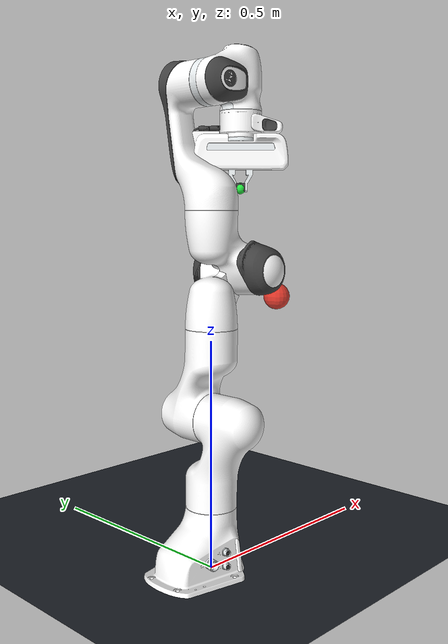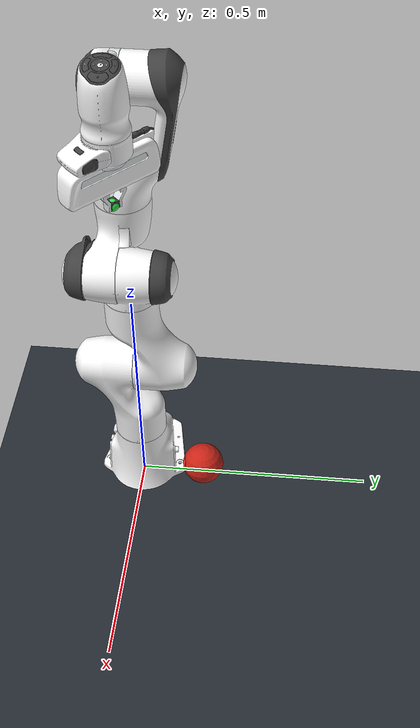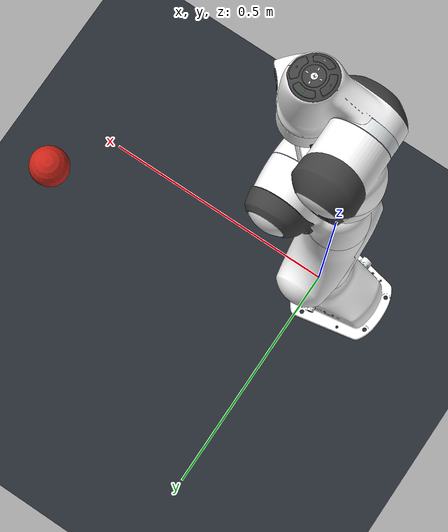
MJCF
<mujoco model="panda_box_ilqr_scene">
  <include file="panda_torque.xml"/>

  <statistic center="0.2 0 0.5" extent="1.2"/>

  <visual>
    <headlight diffuse="0.7 0.7 0.7"
               ambient="0.35 0.35 0.35"
               specular="0.1 0.1 0.1"/>
    <rgba haze="0.15 0.20 0.25 1"/>
    <global azimuth="135"
            elevation="-20"
            offwidth="1280"
            offheight="720"/>
  </visual>

  <asset>
    <texture name="skybox"
             type="skybox"
             builtin="gradient"
             rgb1="0.28 0.40 0.55"
             rgb2="0.02 0.03 0.05"
             width="512"
             height="3072"/>

    <texture name="groundplane"
             type="2d"
             builtin="checker"
             mark="edge"
             rgb1="0.20 0.22 0.25"
             rgb2="0.10 0.12 0.15"
             markrgb="0.8 0.8 0.8"
             width="300"
             height="300"/>

    <material name="groundplane"
              texture="groundplane"
              texuniform="true"
              texrepeat="5 5"
              reflectance="0.15"/>

    <material name="target_material"
              rgba="0.95 0.18 0.12 0.85"/>
  </asset>

  <worldbody>
    <geom name="ground"
          type="plane"
          size="2 2 0.1"
          material="groundplane"
          pos="0 0 0"
          contype="0"
          conaffinity="0"/>

    <!-- Reachable Cartesian target for the end-effector site. -->
    <geom name="target"
          type="sphere"
          pos="0.45 0.20 0.55"
          size="0.035"
          material="target_material"
          contype="0"
          conaffinity="0"/>
  </worldbody>
</mujoco>

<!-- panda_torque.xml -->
<mujoco model="panda">
  <compiler angle="radian" meshdir="assets" autolimits="true" />
  <option integrator="implicitfast" timestep="0.002" />
  <default>
    <default class="panda">
      <material specular="0.5" shininess="0.25" />
      <joint armature="0.1" damping="1" axis="0 0 1" range="-2.8973 2.8973" />
      <general dyntype="none" biastype="affine" ctrlrange="-2.8973 2.8973" forcerange="-87 87" />
      <default class="finger">
        <joint axis="0 1 0" type="slide" range="0 0.04" />
      </default>
      <default class="visual">
        <geom type="mesh" contype="0" conaffinity="0" group="2" />
      </default>
      <default class="collision">
        <geom type="mesh" group="3" />
        <default class="fingertip_pad_collision_1">
          <geom type="box" size="0.0085 0.004 0.0085" pos="0 0.0055 0.0445" />
        </default>
        <default class="fingertip_pad_collision_2">
          <geom type="box" size="0.003 0.002 0.003" pos="0.0055 0.002 0.05" />
        </default>
        <default class="fingertip_pad_collision_3">
          <geom type="box" size="0.003 0.002 0.003" pos="-0.0055 0.002 0.05" />
        </default>
        <default class="fingertip_pad_collision_4">
          <geom type="box" size="0.003 0.002 0.0035" pos="0.0055 0.002 0.0395" />
        </default>
        <default class="fingertip_pad_collision_5">
          <geom type="box" size="0.003 0.002 0.0035" pos="-0.0055 0.002 0.0395" />
        </default>
      </default>
    </default>
  </default>
  <asset>
    <material class="panda" name="white" rgba="1 1 1 1" />
    <material class="panda" name="off_white" rgba="0.901961 0.921569 0.929412 1" />
    <material class="panda" name="black" rgba="0.25 0.25 0.25 1" />
    <material class="panda" name="green" rgba="0 1 0 1" />
    <material class="panda" name="light_blue" rgba="0.039216 0.541176 0.780392 1" />
    <mesh name="link0_c" file="link0.stl" />
    <mesh name="link1_c" file="link1.stl" />
    <mesh name="link2_c" file="link2.stl" />
    <mesh name="link3_c" file="link3.stl" />
    <mesh name="link4_c" file="link4.stl" />
    <mesh name="link5_c0" file="link5_collision_0.obj" />
    <mesh name="link5_c1" file="link5_collision_1.obj" />
    <mesh name="link5_c2" file="link5_collision_2.obj" />
    <mesh name="link6_c" file="link6.stl" />
    <mesh name="link7_c" file="link7.stl" />
    <mesh name="hand_c" file="hand.stl" />
    <mesh file="link0_0.obj" />
    <mesh file="link0_1.obj" />
    <mesh file="link0_2.obj" />
    <mesh file="link0_3.obj" />
    <mesh file="link0_4.obj" />
    <mesh file="link0_5.obj" />
    <mesh file="link0_7.obj" />
    <mesh file="link0_8.obj" />
    <mesh file="link0_9.obj" />
    <mesh file="link0_10.obj" />
    <mesh file="link0_11.obj" />
    <mesh file="link1.obj" />
    <mesh file="link2.obj" />
    <mesh file="link3_0.obj" />
    <mesh file="link3_1.obj" />
    <mesh file="link3_2.obj" />
    <mesh file="link3_3.obj" />
    <mesh file="link4_0.obj" />
    <mesh file="link4_1.obj" />
    <mesh file="link4_2.obj" />
    <mesh file="link4_3.obj" />
    <mesh file="link5_0.obj" />
    <mesh file="link5_1.obj" />
    <mesh file="link5_2.obj" />
    <mesh file="link6_0.obj" />
    <mesh file="link6_1.obj" />
    <mesh file="link6_2.obj" />
    <mesh file="link6_3.obj" />
    <mesh file="link6_4.obj" />
    <mesh file="link6_5.obj" />
    <mesh file="link6_6.obj" />
    <mesh file="link6_7.obj" />
    <mesh file="link6_8.obj" />
    <mesh file="link6_9.obj" />
    <mesh file="link6_10.obj" />
    <mesh file="link6_11.obj" />
    <mesh file="link6_12.obj" />
    <mesh file="link6_13.obj" />
    <mesh file="link6_14.obj" />
    <mesh file="link6_15.obj" />
    <mesh file="link6_16.obj" />
    <mesh file="link7_0.obj" />
    <mesh file="link7_1.obj" />
    <mesh file="link7_2.obj" />
    <mesh file="link7_3.obj" />
    <mesh file="link7_4.obj" />
    <mesh file="link7_5.obj" />
    <mesh file="link7_6.obj" />
    <mesh file="link7_7.obj" />
    <mesh file="hand_0.obj" />
    <mesh file="hand_1.obj" />
    <mesh file="hand_2.obj" />
    <mesh file="hand_3.obj" />
    <mesh file="hand_4.obj" />
    <mesh file="finger_0.obj" />
    <mesh file="finger_1.obj" />
  </asset>
  <worldbody>
    <light name="top" pos="0 0 2" mode="trackcom" />
    <body name="link0" childclass="panda">
      <inertial mass="0.629769" pos="-0.041018 -0.00014 0.049974" fullinertia="0.00315 0.00388 0.004285 8.2904e-7 0.00015 8.2299e-6" />
      <geom mesh="link0_0" material="off_white" class="visual" />
      <geom mesh="link0_1" material="black" class="visual" />
      <geom mesh="link0_2" material="off_white" class="visual" />
      <geom mesh="link0_3" material="black" class="visual" />
      <geom mesh="link0_4" material="off_white" class="visual" />
      <geom mesh="link0_5" material="black" class="visual" />
      <geom mesh="link0_7" material="white" class="visual" />
      <geom mesh="link0_8" material="white" class="visual" />
      <geom mesh="link0_9" material="black" class="visual" />
      <geom mesh="link0_10" material="off_white" class="visual" />
      <geom mesh="link0_11" material="white" class="visual" />
      <geom mesh="link0_c" class="collision" />
      <body name="link1" pos="0 0 0.333">
        <inertial mass="4.970684" pos="0.003875 0.002081 -0.04762" fullinertia="0.70337 0.70661 0.0091170 -0.00013900 0.0067720 0.019169" />
        <joint name="joint1" />
        <geom material="white" mesh="link1" class="visual" />
        <geom mesh="link1_c" class="collision" />
        <body name="link2" quat="1 -1 0 0">
          <inertial mass="0.646926" pos="-0.003141 -0.02872 0.003495" fullinertia="0.0079620 2.8110e-2 2.5995e-2 -3.925e-3 1.0254e-2 7.04e-4" />
          <joint name="joint2" range="-1.7628 1.7628" />
          <geom material="white" mesh="link2" class="visual" />
          <geom mesh="link2_c" class="collision" />
          <body name="link3" pos="0 -0.316 0" quat="1 1 0 0">
            <joint name="joint3" />
            <inertial mass="3.228604" pos="2.7518e-2 3.9252e-2 -6.6502e-2" fullinertia="3.7242e-2 3.6155e-2 1.083e-2 -4.761e-3 -1.1396e-2 -1.2805e-2" />
            <geom mesh="link3_0" material="white" class="visual" />
            <geom mesh="link3_1" material="white" class="visual" />
            <geom mesh="link3_2" material="white" class="visual" />
            <geom mesh="link3_3" material="black" class="visual" />
            <geom mesh="link3_c" class="collision" />
            <body name="link4" pos="0.0825 0 0" quat="1 1 0 0">
              <inertial mass="3.587895" pos="-5.317e-2 1.04419e-1 2.7454e-2" fullinertia="2.5853e-2 1.9552e-2 2.8323e-2 7.796e-3 -1.332e-3 8.641e-3" />
              <joint name="joint4" range="-3.0718 -0.0698" />
              <geom mesh="link4_0" material="white" class="visual" />
              <geom mesh="link4_1" material="white" class="visual" />
              <geom mesh="link4_2" material="black" class="visual" />
              <geom mesh="link4_3" material="white" class="visual" />
              <geom mesh="link4_c" class="collision" />
              <body name="link5" pos="-0.0825 0.384 0" quat="1 -1 0 0">
                <inertial mass="1.225946" pos="-1.1953e-2 4.1065e-2 -3.8437e-2" fullinertia="3.5549e-2 2.9474e-2 8.627e-3 -2.117e-3 -4.037e-3 2.29e-4" />
                <joint name="joint5" />
                <geom mesh="link5_0" material="black" class="visual" />
                <geom mesh="link5_1" material="white" class="visual" />
                <geom mesh="link5_2" material="white" class="visual" />
                <geom mesh="link5_c0" class="collision" />
                <geom mesh="link5_c1" class="collision" />
                <geom mesh="link5_c2" class="collision" />
                <body name="link6" quat="1 1 0 0">
                  <inertial mass="1.666555" pos="6.0149e-2 -1.4117e-2 -1.0517e-2" fullinertia="1.964e-3 4.354e-3 5.433e-3 1.09e-4 -1.158e-3 3.41e-4" />
                  <joint name="joint6" range="-0.0175 3.7525" />
                  <geom mesh="link6_0" material="off_white" class="visual" />
                  <geom mesh="link6_1" material="white" class="visual" />
                  <geom mesh="link6_2" material="black" class="visual" />
                  <geom mesh="link6_3" material="white" class="visual" />
                  <geom mesh="link6_4" material="white" class="visual" />
                  <geom mesh="link6_5" material="white" class="visual" />
                  <geom mesh="link6_6" material="white" class="visual" />
                  <geom mesh="link6_7" material="light_blue" class="visual" />
                  <geom mesh="link6_8" material="light_blue" class="visual" />
                  <geom mesh="link6_9" material="black" class="visual" />
                  <geom mesh="link6_10" material="black" class="visual" />
                  <geom mesh="link6_11" material="white" class="visual" />
                  <geom mesh="link6_12" material="green" class="visual" />
                  <geom mesh="link6_13" material="white" class="visual" />
                  <geom mesh="link6_14" material="black" class="visual" />
                  <geom mesh="link6_15" material="black" class="visual" />
                  <geom mesh="link6_16" material="white" class="visual" />
                  <geom mesh="link6_c" class="collision" />
                  <body name="link7" pos="0.088 0 0" quat="1 1 0 0">
                    <inertial mass="7.35522e-01" pos="1.0517e-2 -4.252e-3 6.1597e-2" fullinertia="1.2516e-2 1.0027e-2 4.815e-3 -4.28e-4 -1.196e-3 -7.41e-4" />
                    <joint name="joint7" />
                    <geom mesh="link7_0" material="white" class="visual" />
                    <geom mesh="link7_1" material="black" class="visual" />
                    <geom mesh="link7_2" material="black" class="visual" />
                    <geom mesh="link7_3" material="black" class="visual" />
                    <geom mesh="link7_4" material="black" class="visual" />
                    <geom mesh="link7_5" material="black" class="visual" />
                    <geom mesh="link7_6" material="black" class="visual" />
                    <geom mesh="link7_7" material="white" class="visual" />
                    <geom mesh="link7_c" class="collision" />
                    <body name="hand" pos="0 0 0.107" quat="0.9238795 0 0 -0.3826834">
                      <inertial mass="0.73" pos="-0.01 0 0.03" diaginertia="0.001 0.0025 0.0017" />
                      <geom mesh="hand_0" material="off_white" class="visual" />
                      <geom mesh="hand_1" material="black" class="visual" />
                      <geom mesh="hand_2" material="black" class="visual" />
                      <geom mesh="hand_3" material="white" class="visual" />
                      <geom mesh="hand_4" material="off_white" class="visual" />
                      <geom mesh="hand_c" class="collision" />
                      <body name="left_finger" pos="0 0 0.0584">
                        <inertial mass="0.015" pos="0 0 0" diaginertia="2.375e-6 2.375e-6 7.5e-7" />
                        <geom mesh="finger_0" material="off_white" class="visual" />
                        <geom mesh="finger_1" material="black" class="visual" />
                        <geom mesh="finger_0" class="collision" />
                        <geom class="fingertip_pad_collision_1" />
                        <geom class="fingertip_pad_collision_2" />
                        <geom class="fingertip_pad_collision_3" />
                        <geom class="fingertip_pad_collision_4" />
                        <geom class="fingertip_pad_collision_5" />
                      </body>
                      <body name="right_finger" pos="0 0 0.0584" quat="0 0 0 1">
                        <inertial mass="0.015" pos="0 0 0" diaginertia="2.375e-6 2.375e-6 7.5e-7" />
                        <geom mesh="finger_0" material="off_white" class="visual" />
                        <geom mesh="finger_1" material="black" class="visual" />
                        <geom mesh="finger_0" class="collision" />
                        <geom class="fingertip_pad_collision_1" />
                        <geom class="fingertip_pad_collision_2" />
                        <geom class="fingertip_pad_collision_3" />
                        <geom class="fingertip_pad_collision_4" />
                        <geom class="fingertip_pad_collision_5" />
                      </body>
                      <site name="ee_site" pos="0 0 0.105" size="0.012" rgba="0.15 0.9 0.25 1" />
                    </body>
                  </body>
                </body>
              </body>
            </body>
          </body>
        </body>
      </body>
    </body>
  </worldbody>
  <actuator>
    <motor name="tau1" joint="joint1" gear="1" ctrllimited="false" forcelimited="false" />
    <motor name="tau2" joint="joint2" gear="1" ctrllimited="false" forcelimited="false" />
    <motor name="tau3" joint="joint3" gear="1" ctrllimited="false" forcelimited="false" />
    <motor name="tau4" joint="joint4" gear="1" ctrllimited="false" forcelimited="false" />
    <motor name="tau5" joint="joint5" gear="1" ctrllimited="false" forcelimited="false" />
    <motor name="tau6" joint="joint6" gear="1" ctrllimited="false" forcelimited="false" />
    <motor name="tau7" joint="joint7" gear="1" ctrllimited="false" forcelimited="false" />
  </actuator>
  <contact>
    <exclude body1="link0" body2="link1" />
  </contact>
</mujoco>
